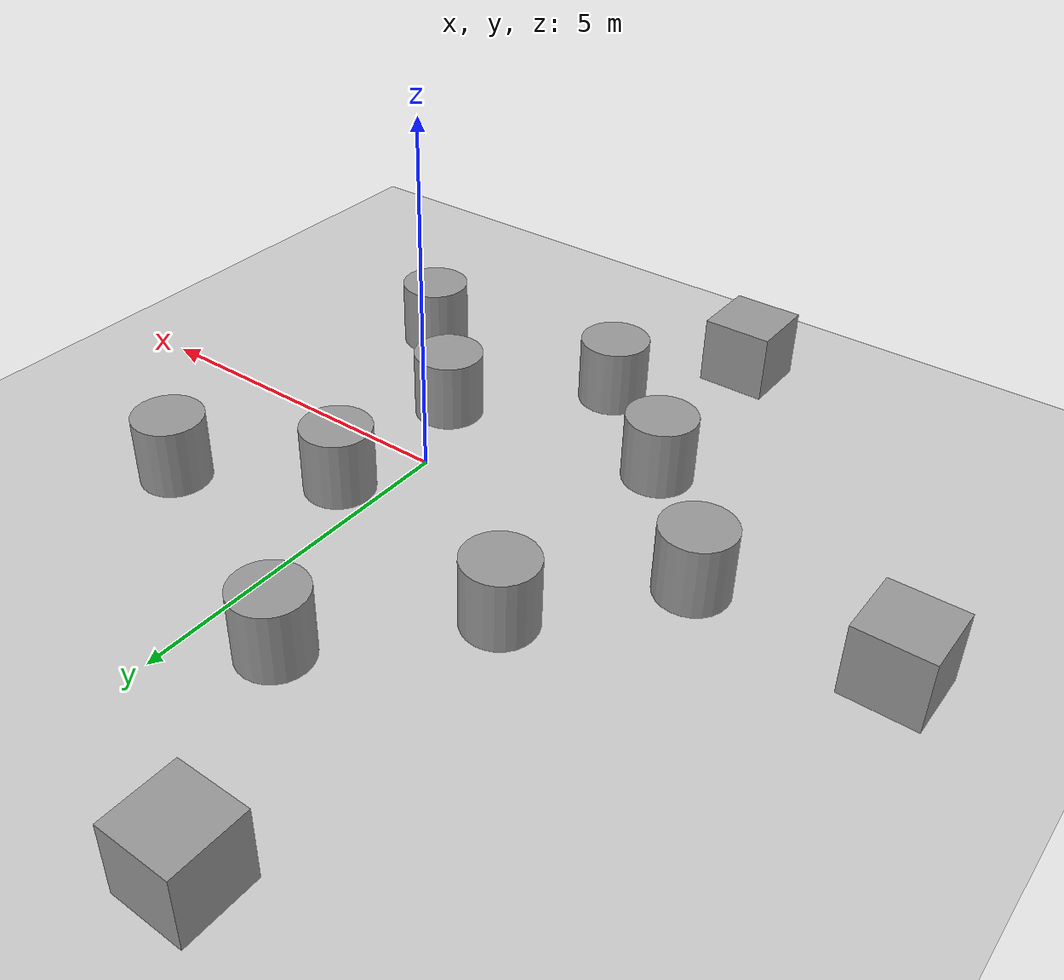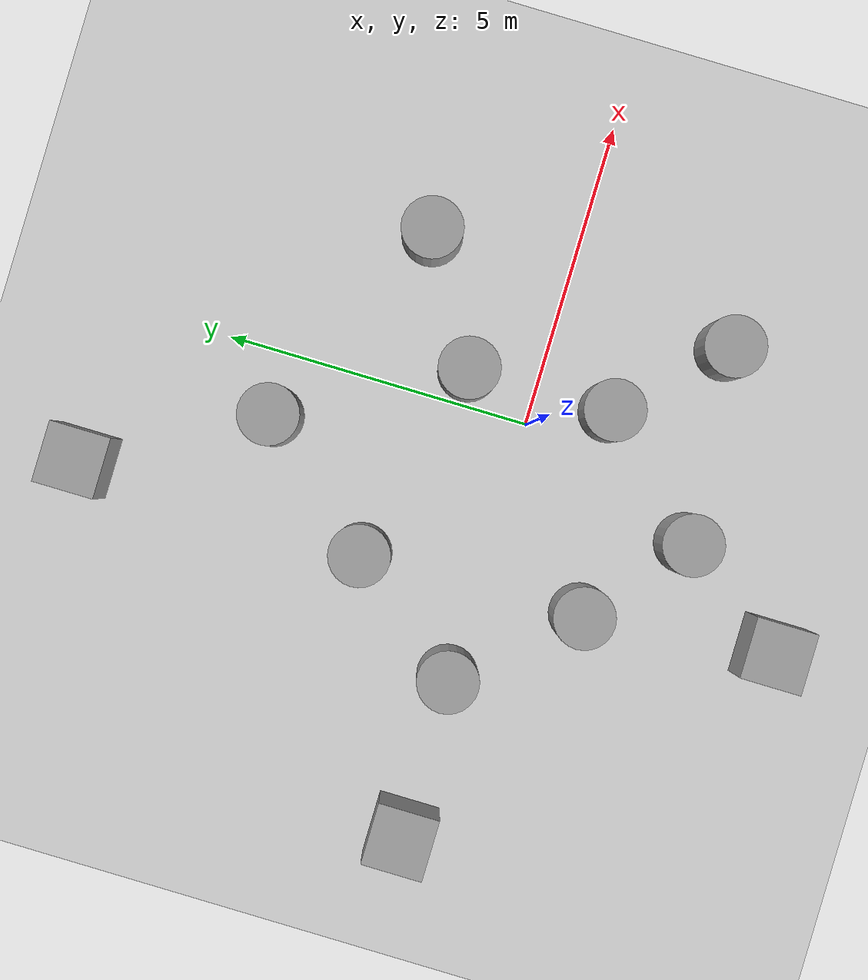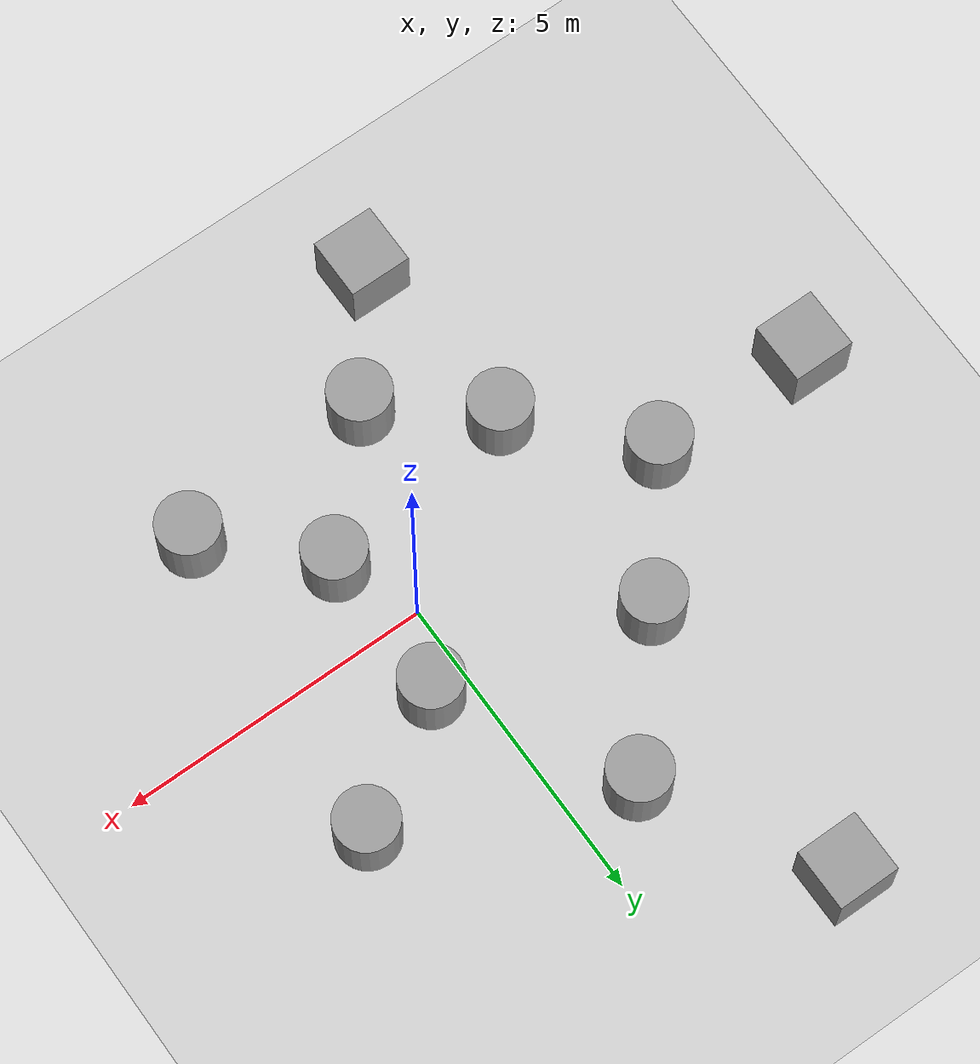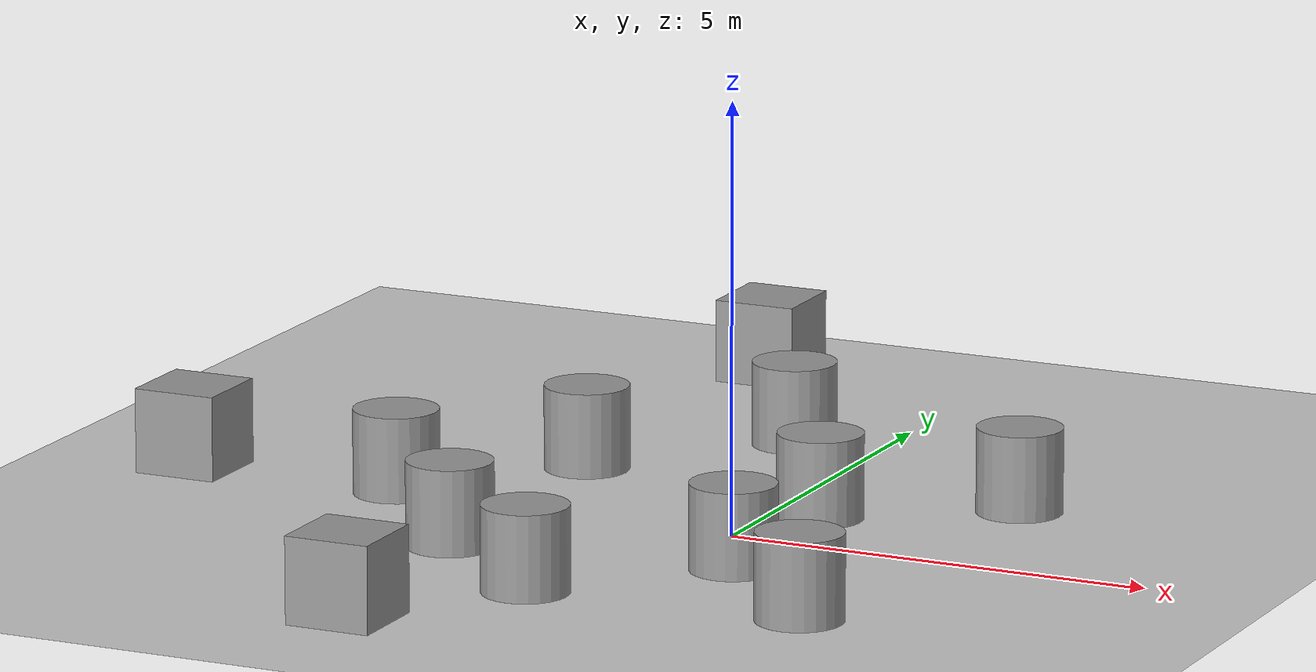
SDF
<sdf version="1.7">
 <world name="default">
  <light name="sun" type="directional">
   <pose>0 0 10 0 -0 0</pose>
   <diffuse>0.8 0.8 0.8 1</diffuse>
   <specular>0.2 0.2 0.2 1</specular>
   <attenuation>
    <range>1000</range>
    <constant>0.9</constant>
    <linear>0.01</linear>
    <quadratic>0.001</quadratic>
   </attenuation>
   <direction>-0.5 0.1 -0.9</direction>
   <spot><inner_angle>0</inner_angle><outer_angle>0</outer_angle><falloff>0</falloff></spot>
  </light>
  <model name="ground_plane">
   <static>1</static>
   <link name="link">
    <collision name="collision">
     <geometry><plane><normal>0 0 1</normal><size>100 100</size></plane></geometry>
     <surface>
      <contact><collide_bitmask>65535</collide_bitmask></contact>
      <friction><ode><mu>100</mu><mu2>50</mu2></ode></friction>
     </surface>
    </collision>
    <visual name="visual">
     <cast_shadows>0</cast_shadows>
     <geometry><plane><normal>0 0 1</normal><size>100 100</size></plane></geometry>
     <material>
      <script><uri>file://media/materials/scripts/gazebo.material</uri><name>Gazebo/Grey</name></script>
     </material>
    </visual>
   </link>
  </model>
  <gravity>0 0 -9.8</gravity>
  <magnetic_field>6e-06 2.3e-05 -4.2e-05</magnetic_field>
  <atmosphere type="adiabatic"/>
  <physics type="ode">
   <max_step_size>0.001</max_step_size>
   <real_time_factor>1</real_time_factor>
   <real_time_update_rate>1000</real_time_update_rate>
  </physics>
  <scene><ambient>0.4 0.4 0.4 1</ambient><background>0.7 0.7 0.7 1</background><shadows>1</shadows></scene>
  <audio><device>default</device></audio>
  <spherical_coordinates>
   <surface_model>EARTH_WGS84</surface_model>
   <latitude_deg>0</latitude_deg>
   <longitude_deg>0</longitude_deg>
   <elevation>0</elevation>
   <heading_deg>0</heading_deg>
  </spherical_coordinates>
  <model name="unit_cylinder">
   <pose>2.07937 -2.75783 0.499992 -3e-06 3e-06 0</pose>
   <link name="link">
    <inertial>
     <mass>1</mass>
     <inertia><ixx>0.145833</ixx><ixy>0</ixy><ixz>0</ixz><iyy>0.145833</iyy><iyz>0</iyz><izz>0.125</izz></inertia>
    </inertial>
    <collision name="collision">
     <geometry><cylinder><radius>0.5</radius><length>1</length></cylinder></geometry>
    </collision>
    <visual name="visual">
     <geometry><cylinder><radius>0.5</radius><length>1</length></cylinder></geometry>
     <material>
      <script><name>Gazebo/Grey</name><uri>file://media/materials/scripts/gazebo.material</uri></script>
     </material>
    </visual>
   </link>
  </model>
  <model name="unit_cylinder_0">
   <pose>0.583104 -1.23222 0.499998 3e-06 -3e-06 0</pose>
   <link name="link">
    <inertial>
     <mass>1</mass>
     <inertia><ixx>0.145833</ixx><ixy>0</ixy><ixz>0</ixz><iyy>0.145833</iyy><iyz>0</iyz><izz>0.125</izz></inertia>
    </inertial>
    <collision name="collision">
     <geometry><cylinder><radius>0.5</radius><length>1</length></cylinder></geometry>
    </collision>
    <visual name="visual">
     <geometry><cylinder><radius>0.5</radius><length>1</length></cylinder></geometry>
     <material>
      <script><name>Gazebo/Grey</name><uri>file://media/materials/scripts/gazebo.material</uri></script>
     </material>
    </visual>
   </link>
  </model>
  <model name="unit_cylinder_1">
   <pose>0.567461 1.14827 0.499992 0 -0 0.023555</pose>
   <link name="link">
    <inertial>
     <mass>1</mass>
     <inertia><ixx>0.145833</ixx><ixy>0</ixy><ixz>0</ixz><iyy>0.145833</iyy><iyz>0</iyz><izz>0.125</izz></inertia>
    </inertial>
    <collision name="collision">
     <geometry><cylinder><radius>0.5</radius><length>1</length></cylinder></geometry>
    </collision>
    <visual name="visual">
     <geometry><cylinder><radius>0.5</radius><length>1</length></cylinder></geometry>
     <material>
      <script><name>Gazebo/Grey</name><uri>file://media/materials/scripts/gazebo.material</uri></script>
     </material>
    </visual>
   </link>
  </model>
  <model name="unit_cylinder_2">
   <pose>2.51212 2.33242 0.499998 3e-06 -3e-06 0</pose>
   <link name="link">
    <inertial>
     <mass>1</mass>
     <inertia><ixx>0.145833</ixx><ixy>0</ixy><ixz>0</ixz><iyy>0.145833</iyy><iyz>0</iyz><izz>0.125</izz></inertia>
    </inertial>
    <collision name="collision">
     <geometry><cylinder><radius>0.5</radius><length>1</length></cylinder></geometry>
    </collision>
    <visual name="visual">
     <geometry><cylinder><radius>0.5</radius><length>1</length></cylinder></geometry>
     <material>
      <script><name>Gazebo/Grey</name><uri>file://media/materials/scripts/gazebo.material</uri></script>
     </material>
    </visual>
   </link>
  </model>
  <model name="unit_cylinder_3">
   <pose>-2.75416 1.96569 0.499992 -3e-06 3e-06 0</pose>
   <link name="link">
    <inertial>
     <mass>1</mass>
     <inertia><ixx>0.145833</ixx><ixy>0</ixy><ixz>0</ixz><iyy>0.145833</iyy><iyz>0</iyz><izz>0.125</izz></inertia>
    </inertial>
    <collision name="collision">
     <geometry><cylinder><radius>0.5</radius><length>1</length></cylinder></geometry>
    </collision>
    <visual name="visual">
     <geometry><cylinder><radius>0.5</radius><length>1</length></cylinder></geometry>
     <material>
      <script><name>Gazebo/Grey</name><uri>file://media/materials/scripts/gazebo.material</uri></script>
     </material>
    </visual>
   </link>
  </model>
  <model name="unit_cylinder_4">
   <pose>-2.68815 -1.70164 0.499998 3e-06 -4e-06 0</pose>
   <link name="link">
    <inertial>
     <mass>1</mass>
     <inertia><ixx>0.145833</ixx><ixy>0</ixy><ixz>0</ixz><iyy>0.145833</iyy><iyz>0</iyz><izz>0.125</izz></inertia>
    </inertial>
    <collision name="collision">
     <geometry><cylinder><radius>0.5</radius><length>1</length></cylinder></geometry>
    </collision>
    <visual name="visual">
     <geometry><cylinder><radius>0.5</radius><length>1</length></cylinder></geometry>
     <material>
      <script><name>Gazebo/Grey</name><uri>file://media/materials/scripts/gazebo.material</uri></script>
     </material>
    </visual>
   </link>
  </model>
  <model name="unit_cylinder_5">
   <pose>-4.25777 0.066016 0.499992 -3e-06 4e-06 0</pose>
   <link name="link">
    <inertial>
     <mass>1</mass>
     <inertia><ixx>0.145833</ixx><ixy>0</ixy><ixz>0</ixz><iyy>0.145833</iyy><iyz>0</iyz><izz>0.125</izz></inertia>
    </inertial>
    <collision name="collision">
     <geometry><cylinder><radius>0.5</radius><length>1</length></cylinder></geometry>
    </collision>
    <visual name="visual">
     <geometry><cylinder><radius>0.5</radius><length>1</length></cylinder></geometry>
     <material>
      <script><name>Gazebo/Grey</name><uri>file://media/materials/scripts/gazebo.material</uri></script>
     </material>
    </visual>
   </link>
  </model>
  <model name="unit_cylinder_6">
   <pose>-1.03052 3.96805 0.499998 3e-06 -4e-06 0</pose>
   <link name="link">
    <inertial>
     <mass>1</mass>
     <inertia><ixx>0.145833</ixx><ixy>0</ixy><ixz>0</ixz><iyy>0.145833</iyy><iyz>0</iyz><izz>0.125</izz></inertia>
    </inertial>
    <collision name="collision">
     <geometry><cylinder><radius>0.5</radius><length>1</length></cylinder></geometry>
    </collision>
    <visual name="visual">
     <geometry><cylinder><radius>0.5</radius><length>1</length></cylinder></geometry>
     <material>
      <script><name>Gazebo/Grey</name><uri>file://media/materials/scripts/gazebo.material</uri></script>
     </material>
    </visual>
   </link>
  </model>
  <model name="unit_cylinder_7">
   <pose>-1.10387 -3.01454 0.499992 -3e-06 -4e-06 -0</pose>
   <link name="link">
    <inertial>
     <mass>1</mass>
     <inertia><ixx>0.145833</ixx><ixy>0</ixy><ixz>0</ixz><iyy>0.145833</iyy><iyz>0</iyz><izz>0.125</izz></inertia>
    </inertial>
    <collision name="collision">
     <geometry><cylinder><radius>0.5</radius><length>1</length></cylinder></geometry>
    </collision>
    <visual name="visual">
     <geometry><cylinder><radius>0.5</radius><length>1</length></cylinder></geometry>
     <material>
      <script><name>Gazebo/Grey</name><uri>file://media/materials/scripts/gazebo.material</uri></script>
     </material>
    </visual>
   </link>
  </model>
  <model name="unit_box">
   <pose>-2.59318 6.72124 0.5 0 -0 0</pose>
   <link name="link">
    <inertial>
     <mass>1</mass>
     <inertia>
      <ixx>0.166667</ixx>
      <ixy>0</ixy>
      <ixz>0</ixz>
      <iyy>0.166667</iyy>
      <iyz>0</iyz>
      <izz>0.166667</izz>
     </inertia>
    </inertial>
    <collision name="collision"><geometry><box><size>1 1 1</size></box></geometry></collision>
    <visual name="visual">
     <geometry><box><size>1 1 1</size></box></geometry>
     <material>
      <script><name>Gazebo/Grey</name><uri>file://media/materials/scripts/gazebo.material</uri></script>
     </material>
    </visual>
   </link>
  </model>
  <model name="unit_box_0">
   <pose>-2.3859 -4.79643 0.5 -0 -0 -0</pose>
   <link name="link">
    <inertial>
     <mass>1</mass>
     <inertia>
      <ixx>0.166667</ixx>
      <ixy>0</ixy>
      <ixz>0</ixz>
      <iyy>0.166667</iyy>
      <iyz>0</iyz>
      <izz>0.166667</izz>
     </inertia>
    </inertial>
    <collision name="collision"><geometry><box><size>1 1 1</size></box></geometry></collision>
    <visual name="visual">
     <geometry><box><size>1 1 1</size></box></geometry>
     <material>
      <script><name>Gazebo/Grey</name><uri>file://media/materials/scripts/gazebo.material</uri></script>
     </material>
    </visual>
   </link>
  </model>
  <model name="unit_box_1">
   <pose>-6.87653 0.06922 0.5 0 -0 0</pose>
   <link name="link">
    <inertial>
     <mass>1</mass>
     <inertia>
      <ixx>0.166667</ixx>
      <ixy>0</ixy>
      <ixz>0</ixz>
      <iyy>0.166667</iyy>
      <iyz>0</iyz>
      <izz>0.166667</izz>
     </inertia>
    </inertial>
    <collision name="collision"><geometry><box><size>1 1 1</size></box></geometry></collision>
    <visual name="visual">
     <geometry><box><size>1 1 1</size></box></geometry>
     <material>
      <script><name>Gazebo/Grey</name><uri>file://media/materials/scripts/gazebo.material</uri></script>
     </material>
    </visual>
   </link>
  </model>
 </world>
</sdf>
